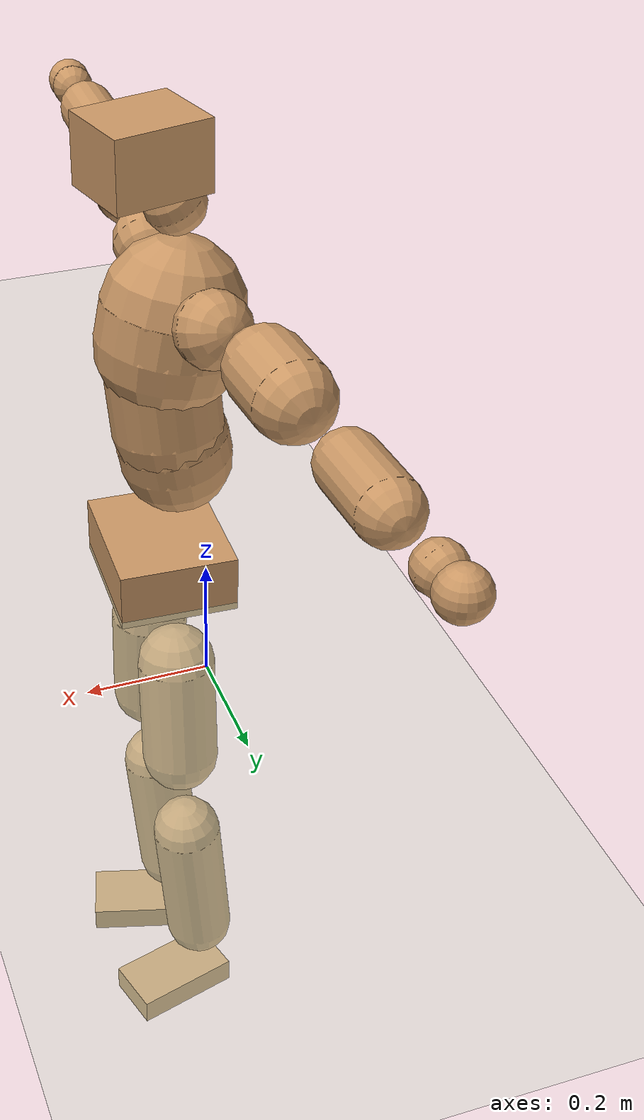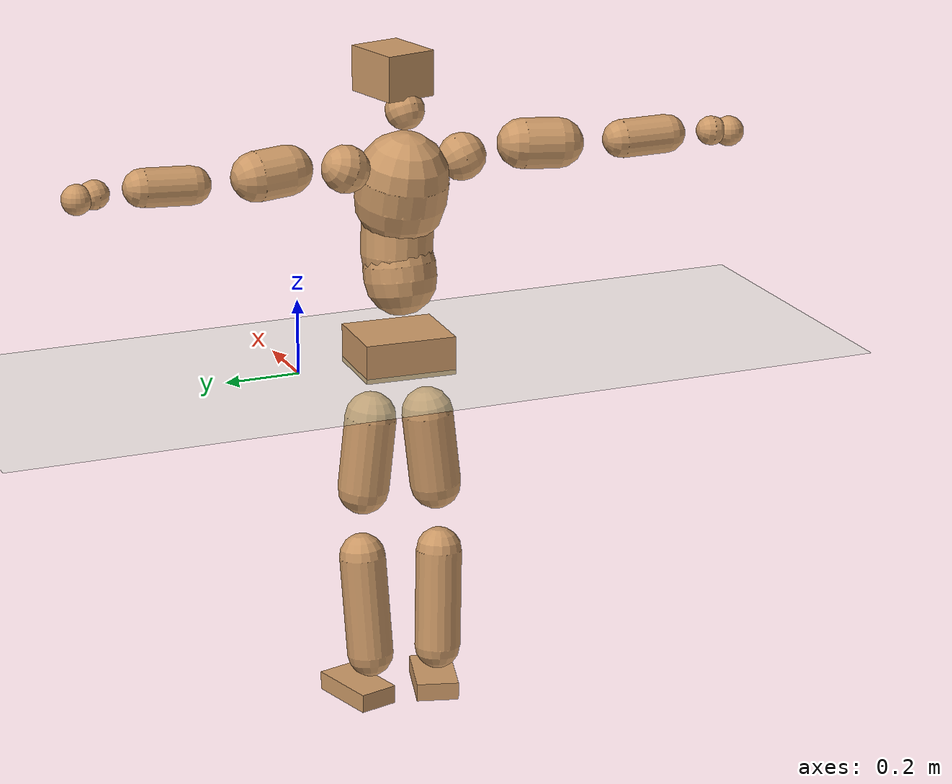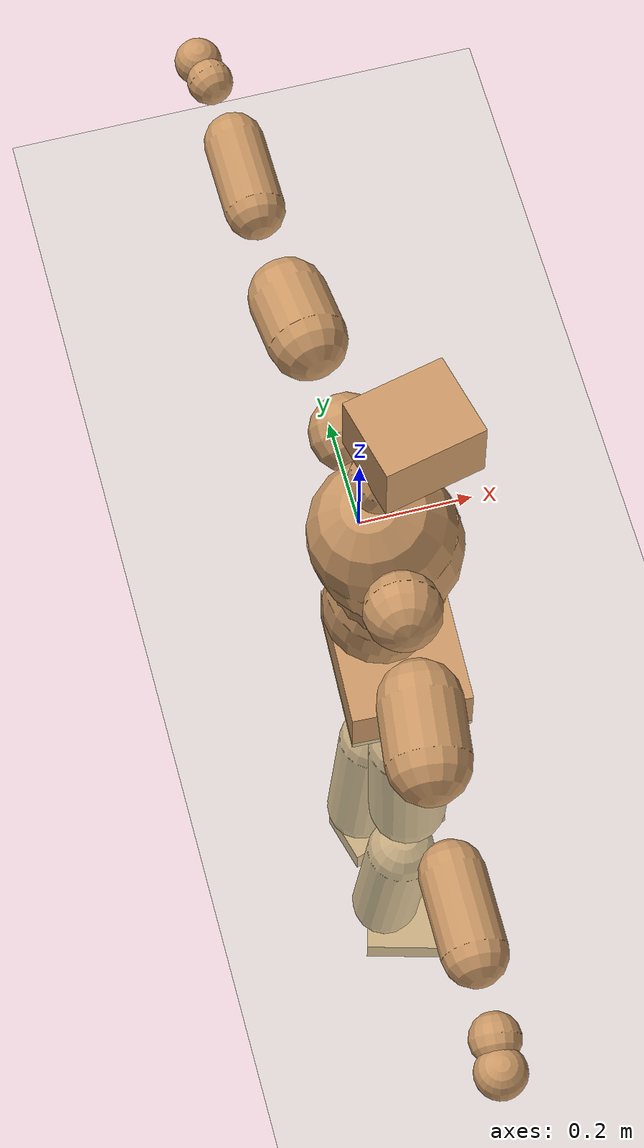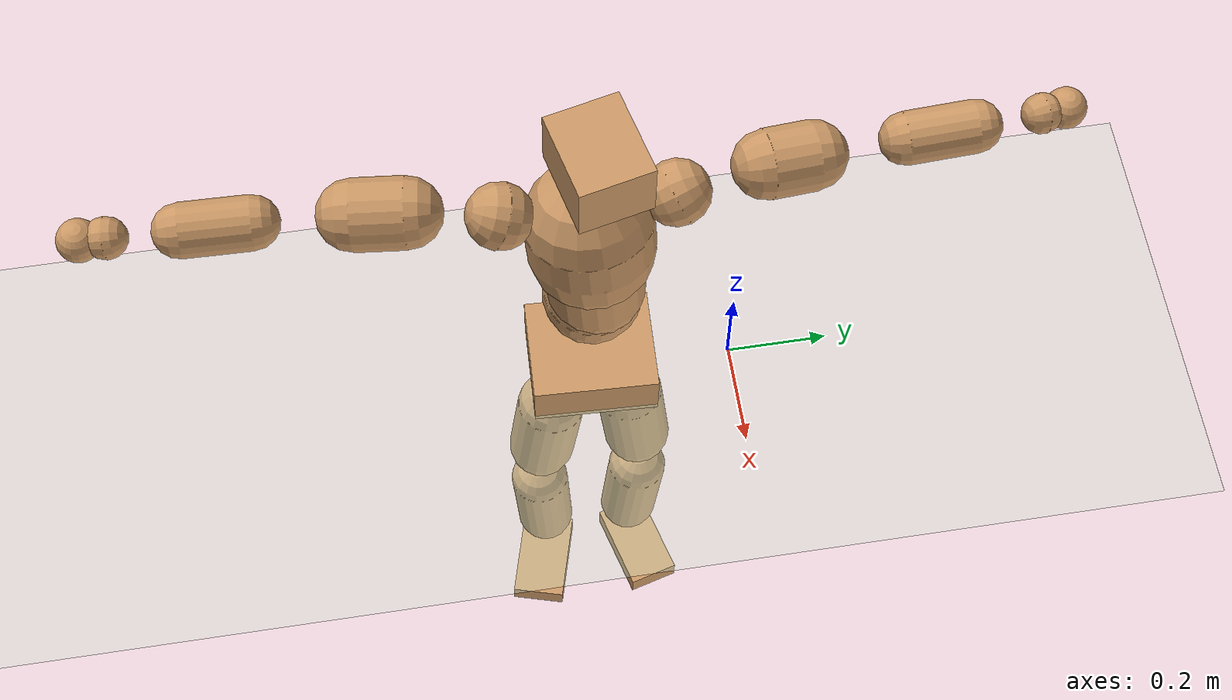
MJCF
<mujoco model="humanoid">
  <compiler coordinate="local" angle="radian"/>
  <default>
    <joint damping="0.0" armature="0.01" stiffness="0.0" limited="true"/>
    <geom conaffinity="1" condim="3" contype="7" margin="0.001" rgba="0.8 0.6 .4 1"/>
  </default>
  <asset>
    <texture type="skybox" builtin="gradient" rgb1=".4 .5 .6" rgb2="0 0 0" width="100" height="100"/>
    <texture builtin="flat" height="1278" mark="cross" markrgb="1 1 1" name="texgeom" random="0.01" rgb1="0.8 0.6 0.4" rgb2="0.8 0.6 0.4" type="cube" width="127"/>
    <texture builtin="checker" height="100" name="texplane" rgb1="0 0 0" rgb2="0.8 0.8 0.8" type="2d" width="100"/>
    <material name="MatPlane" reflectance="0.5" shininess="1" specular="1" texrepeat="60 60" texture="texplane"/>
    <material name="geom" texture="texgeom" texuniform="true"/>
  </asset>
  <worldbody>
    <light cutoff="100" diffuse="1 1 1" dir="-0 0 -1.3" directional="true" exponent="1" pos="0 0 1.3" specular=".1 .1 .1"/>
    <geom conaffinity="1" condim="3" name="floor" pos="0 0 0" rgba="0.8 0.9 0.8 1" size="100 100 .2" type="plane" material="MatPlane"/>
    <body name="Pelvis" pos="0.0017 -0.2773 0.0442">
      <freejoint name="Pelvis"/>
      <geom type="box" contype="1" conaffinity="1" density="5359.374888" pos="-0.0119 0.0005 -0.0081" size="0.1022 0.1227 0.0517" quat="0.9998 0.0000 0.0000 -0.0216" name="Pelvis"/>
      <body name="L_Hip" pos="-0.012 0.0697 -0.0901">
        <joint name="L_Hip_x" type="hinge" pos="0 0 0" axis="1 0 0" stiffness="1600" damping="160" armature="0.02" range="-180.0000 180.0000"/>
        <joint name="L_Hip_y" type="hinge" pos="0 0 0" axis="0 1 0" stiffness="1600" damping="160" armature="0.02" range="-180.0000 180.0000"/>
        <joint name="L_Hip_z" type="hinge" pos="0 0 0" axis="0 0 1" stiffness="1600" damping="160" armature="0.02" range="-180.0000 180.0000"/>
        <geom type="capsule" contype="1" conaffinity="1" density="2040.816327" size="0.0687" fromto="0.0008 0.0104 -0.0982 0.0025 0.0317 -0.2977" name="L_Hip"/>
        <body name="L_Knee" pos="0.0034 0.0421 -0.3959">
          <joint name="L_Knee_x" type="hinge" pos="0 0 0" axis="1 0 0" stiffness="1600" damping="160" armature="0.02" range="-180.0000 180.0000"/>
          <joint name="L_Knee_y" type="hinge" pos="0 0 0" axis="0 1 0" stiffness="1600" damping="160" armature="0.02" range="-180.0000 180.0000"/>
          <joint name="L_Knee_z" type="hinge" pos="0 0 0" axis="0 0 1" stiffness="1600" damping="160" armature="0.02" range="-180.0000 180.0000"/>
          <geom type="capsule" contype="1" conaffinity="1" density="1234.567901" size="0.0624" fromto="-0.0088 -0.0037 -0.0919 -0.0352 -0.0147 -0.3656" name="L_Knee"/>
          <body name="L_Ankle" pos="-0.044 -0.0184 -0.4575">
            <joint name="L_Ankle_x" type="hinge" pos="0 0 0" axis="1 0 0" stiffness="1600" damping="160" armature="0.02" range="-180.0000 180.0000"/>
            <joint name="L_Ankle_y" type="hinge" pos="0 0 0" axis="0 1 0" stiffness="1600" damping="160" armature="0.02" range="-180.0000 180.0000"/>
            <joint name="L_Ankle_z" type="hinge" pos="0 0 0" axis="0 0 1" stiffness="1600" damping="160" armature="0.02" range="-180.0000 180.0000"/>
            <geom type="box" contype="1" conaffinity="1" density="999.999991" pos="0.0673 0.0179 -0.0320" size="0.0976 0.0539 0.0251" quat="0.9916 0.0000 0.0000 0.1294" name="L_Ankle"/>
            <body name="L_Toe" pos="0.1347 0.0357 -0.064">
              <joint name="L_Toe_x" type="hinge" pos="0 0 0" axis="1 0 0" stiffness="1000" damping="100" armature="0.02" range="-180.0000 180.0000"/>
              <joint name="L_Toe_y" type="hinge" pos="0 0 0" axis="0 1 0" stiffness="1000" damping="100" armature="0.02" range="-180.0000 180.0000"/>
              <joint name="L_Toe_z" type="hinge" pos="0 0 0" axis="0 0 1" stiffness="1000" damping="100" armature="0.02" range="-180.0000 180.0000"/>
              <geom type="box" contype="1" conaffinity="1" density="8781246.433821" pos="0.0000 0.0000 0.0319" size="0.0011 0.0027 0.0013" quat="0.9909 0.0000 0.0000 0.1343" name="L_Toe"/>
            </body>
          </body>
        </body>
      </body>
      <body name="R_Hip" pos="-0.0087 -0.0711 -0.0981">
        <joint name="R_Hip_x" type="hinge" pos="0 0 0" axis="1 0 0" stiffness="1600" damping="160" armature="0.02" range="-180.0000 180.0000"/>
        <joint name="R_Hip_y" type="hinge" pos="0 0 0" axis="0 1 0" stiffness="1600" damping="160" armature="0.02" range="-180.0000 180.0000"/>
        <joint name="R_Hip_z" type="hinge" pos="0 0 0" axis="0 0 1" stiffness="1600" damping="160" armature="0.02" range="-180.0000 180.0000"/>
        <geom type="capsule" contype="1" conaffinity="1" density="2040.816327" size="0.0686" fromto="-0.0018 -0.0108 -0.0980 -0.0054 -0.0333 -0.3021" name="R_Hip"/>
        <body name="R_Knee" pos="-0.0072 -0.0442 -0.4001">
          <joint name="R_Knee_x" type="hinge" pos="0 0 0" axis="1 0 0" stiffness="1600" damping="160" armature="0.02" range="-180.0000 180.0000"/>
          <joint name="R_Knee_y" type="hinge" pos="0 0 0" axis="0 1 0" stiffness="1600" damping="160" armature="0.02" range="-180.0000 180.0000"/>
          <joint name="R_Knee_z" type="hinge" pos="0 0 0" axis="0 0 1" stiffness="1600" damping="160" armature="0.02" range="-180.0000 180.0000"/>
          <geom type="capsule" contype="1" conaffinity="1" density="1234.567901" size="0.0619" fromto="-0.0079 0.0045 -0.0915 -0.0313 0.0178 -0.3617" name="R_Knee"/>
          <body name="R_Ankle" pos="-0.0392 0.0224 -0.4531">
            <joint name="R_Ankle_x" type="hinge" pos="0 0 0" axis="1 0 0" stiffness="1600" damping="160" armature="0.02" range="-180.0000 180.0000"/>
            <joint name="R_Ankle_y" type="hinge" pos="0 0 0" axis="0 1 0" stiffness="1600" damping="160" armature="0.02" range="-180.0000 180.0000"/>
            <joint name="R_Ankle_z" type="hinge" pos="0 0 0" axis="0 0 1" stiffness="1600" damping="160" armature="0.02" range="-180.0000 180.0000"/>
            <geom type="box" contype="1" conaffinity="1" density="999.999915" pos="0.0706 -0.0201 -0.0341" size="0.0967 0.0571 0.0243" quat="0.9904 0.0000 0.0000 -0.1379" name="R_Ankle"/>
            <body name="R_Toe" pos="0.1412 -0.0401 -0.0682">
              <joint name="R_Toe_x" type="hinge" pos="0 0 0" axis="1 0 0" stiffness="1000" damping="100" armature="0.02" range="-180.0000 180.0000"/>
              <joint name="R_Toe_y" type="hinge" pos="0 0 0" axis="0 1 0" stiffness="1000" damping="100" armature="0.02" range="-180.0000 180.0000"/>
              <joint name="R_Toe_z" type="hinge" pos="0 0 0" axis="0 0 1" stiffness="1000" damping="100" armature="0.02" range="-180.0000 180.0000"/>
              <geom type="box" contype="1" conaffinity="1" density="8081144.738342" pos="0.0000 0.0000 0.0345" size="0.0013 0.0028 0.0012" quat="0.9916 0.0000 0.0000 -0.1297" name="R_Toe"/>
            </body>
          </body>
        </body>
      </body>
      <body name="Torso" pos="-0.0505 0.0044 0.1395">
        <joint name="Torso_x" type="hinge" pos="0 0 0" axis="1 0 0" stiffness="2000" damping="200" armature="0.02" range="-180.0000 180.0000"/>
        <joint name="Torso_y" type="hinge" pos="0 0 0" axis="0 1 0" stiffness="2000" damping="200" armature="0.02" range="-180.0000 180.0000"/>
        <joint name="Torso_z" type="hinge" pos="0 0 0" axis="0 0 1" stiffness="2000" damping="200" armature="0.02" range="-180.0000 180.0000"/>
        <geom type="capsule" contype="1" conaffinity="1" density="2040.816327" size="0.096" fromto="0.0179 0.0029 0.0943 0.0103 0.0016 0.0542" name="Torso"/>
        <body name="Spine" pos="0.0282 0.0045 0.1485">
          <joint name="Spine_x" type="hinge" pos="0 0 0" axis="1 0 0" stiffness="2000" damping="200" armature="0.02" range="-180.0000 180.0000"/>
          <joint name="Spine_y" type="hinge" pos="0 0 0" axis="0 1 0" stiffness="2000" damping="200" armature="0.02" range="-180.0000 180.0000"/>
          <joint name="Spine_z" type="hinge" pos="0 0 0" axis="0 0 1" stiffness="2000" damping="200" armature="0.02" range="-180.0000 180.0000"/>
          <geom type="capsule" contype="1" conaffinity="1" density="2040.816327" size="0.0946" fromto="0.0077 -0.0061 0.0941 -0.0026 0.0021 -0.0323" name="Spine"/>
          <body name="Chest" pos="0.0051 -0.004 0.0618">
            <joint name="Chest_x" type="hinge" pos="0 0 0" axis="1 0 0" stiffness="2000" damping="200" armature="0.02" range="-180.0000 180.0000"/>
            <joint name="Chest_y" type="hinge" pos="0 0 0" axis="0 1 0" stiffness="2000" damping="200" armature="0.02" range="-180.0000 180.0000"/>
            <joint name="Chest_z" type="hinge" pos="0 0 0" axis="0 0 1" stiffness="2000" damping="200" armature="0.02" range="-180.0000 180.0000"/>
            <geom type="capsule" contype="1" conaffinity="1" density="2040.816327" size="0.1203" fromto="-0.0247 -0.0062 0.1176 -0.0114 -0.0029 0.0542" name="Chest"/>
            <body name="Neck" pos="-0.0556 -0.014 0.2504">
              <joint name="Neck_x" type="hinge" pos="0 0 0" axis="1 0 0" stiffness="1000" damping="100" armature="0.02" range="-180.0000 180.0000"/>
              <joint name="Neck_y" type="hinge" pos="0 0 0" axis="0 1 0" stiffness="1000" damping="100" armature="0.02" range="-180.0000 180.0000"/>
              <joint name="Neck_z" type="hinge" pos="0 0 0" axis="0 0 1" stiffness="1000" damping="100" armature="0.02" range="-180.0000 180.0000"/>
              <geom type="capsule" contype="1" conaffinity="1" density="1000" size="0.0513" fromto="0.0255 0.0051 0.0448 0.0265 0.0053 0.0465" name="Neck"/>
              <body name="Head" pos="0.0519 0.0105 0.0914">
                <joint name="Head_x" type="hinge" pos="0 0 0" axis="1 0 0" stiffness="1000" damping="100" armature="0.02" range="-180.0000 180.0000"/>
                <joint name="Head_y" type="hinge" pos="0 0 0" axis="0 1 0" stiffness="1000" damping="100" armature="0.02" range="-180.0000 180.0000"/>
                <joint name="Head_z" type="hinge" pos="0 0 0" axis="0 0 1" stiffness="1000" damping="100" armature="0.02" range="-180.0000 180.0000"/>
                <geom type="box" contype="1" conaffinity="1" density="2250.000011" pos="0.0270 0.0062 0.0467" size="0.0837 0.0695 0.0594" quat="0.9935 0.0000 0.0000 0.1134" name="Head"/>
              </body>
            </body>
            <body name="L_Thorax" pos="-0.0236 0.0849 0.133">
              <joint name="L_Thorax_x" type="hinge" pos="0 0 0" axis="1 0 0" stiffness="1000" damping="100" armature="0.02" range="-180.0000 180.0000"/>
              <joint name="L_Thorax_y" type="hinge" pos="0 0 0" axis="0 1 0" stiffness="1000" damping="100" armature="0.02" range="-180.0000 180.0000"/>
              <joint name="L_Thorax_z" type="hinge" pos="0 0 0" axis="0 0 1" stiffness="1000" damping="100" armature="0.02" range="-180.0000 180.0000"/>
              <geom type="capsule" contype="1" conaffinity="1" density="1000" size="0.0626" fromto="-0.0125 0.0704 0.0249 -0.0128 0.0722 0.0256" name="L_Thorax"/>
              <body name="L_Shoulder" pos="-0.0252 0.1426 0.0505">
                <joint name="L_Shoulder_x" type="hinge" pos="0 0 0" axis="1 0 0" stiffness="1000" damping="100" armature="0.02" range="-720.0000 720.0000"/>
                <joint name="L_Shoulder_y" type="hinge" pos="0 0 0" axis="0 1 0" stiffness="1000" damping="100" armature="0.02" range="-720.0000 720.0000"/>
                <joint name="L_Shoulder_z" type="hinge" pos="0 0 0" axis="0 0 1" stiffness="1000" damping="100" armature="0.02" range="-720.0000 720.0000"/>
                <geom type="capsule" contype="1" conaffinity="1" density="1000" size="0.0651" fromto="-0.0096 0.0944 -0.0057 -0.0183 0.1808 -0.0109" name="L_Shoulder"/>
                <body name="L_Elbow" pos="-0.0279 0.2753 -0.0165">
                  <joint name="L_Elbow_x" type="hinge" pos="0 0 0" axis="1 0 0" stiffness="1000" damping="100" armature="0.02" range="-720.0000 720.0000"/>
                  <joint name="L_Elbow_y" type="hinge" pos="0 0 0" axis="0 1 0" stiffness="1000" damping="100" armature="0.02" range="-720.0000 720.0000"/>
                  <joint name="L_Elbow_z" type="hinge" pos="0 0 0" axis="0 0 1" stiffness="1000" damping="100" armature="0.02" range="-720.0000 720.0000"/>
                  <geom type="capsule" contype="1" conaffinity="1" density="1000" size="0.0495" fromto="-0.0011 0.0793 0.0043 -0.0029 0.2078 0.0113" name="L_Elbow"/>
                  <body name="L_Wrist" pos="-0.004 0.2872 0.0156">
                    <joint name="L_Wrist_x" type="hinge" pos="0 0 0" axis="1 0 0" stiffness="600" damping="60" armature="0.02" range="-180.0000 180.0000"/>
                    <joint name="L_Wrist_y" type="hinge" pos="0 0 0" axis="0 1 0" stiffness="600" damping="60" armature="0.02" range="-180.0000 180.0000"/>
                    <joint name="L_Wrist_z" type="hinge" pos="0 0 0" axis="0 0 1" stiffness="600" damping="60" armature="0.02" range="-180.0000 180.0000"/>
                    <geom type="capsule" contype="1" conaffinity="1" density="1000" size="0.0376" fromto="-0.0081 0.0461 -0.0056 -0.0085 0.0481 -0.0058" name="L_Wrist"/>
                    <body name="L_Hand" pos="-0.0166 0.0942 -0.0114">
                      <joint name="L_Hand_x" type="hinge" pos="0 0 0" axis="1 0 0" stiffness="600" damping="60" armature="0.02" range="-180.0000 180.0000"/>
                      <joint name="L_Hand_y" type="hinge" pos="0 0 0" axis="0 1 0" stiffness="600" damping="60" armature="0.02" range="-180.0000 180.0000"/>
                      <joint name="L_Hand_z" type="hinge" pos="0 0 0" axis="0 0 1" stiffness="600" damping="60" armature="0.02" range="-180.0000 180.0000"/>
                      <geom type="sphere" contype="1" conaffinity="1" density="1000" size="0.0388" pos="0.0000 0.0000 0.0000" name="L_Hand"/>
                    </body>
                  </body>
                </body>
              </body>
            </body>
            <body name="R_Thorax" pos="-0.029 -0.0981 0.1317">
              <joint name="R_Thorax_x" type="hinge" pos="0 0 0" axis="1 0 0" stiffness="1000" damping="100" armature="0.02" range="-180.0000 180.0000"/>
              <joint name="R_Thorax_y" type="hinge" pos="0 0 0" axis="0 1 0" stiffness="1000" damping="100" armature="0.02" range="-180.0000 180.0000"/>
              <joint name="R_Thorax_z" type="hinge" pos="0 0 0" axis="0 0 1" stiffness="1000" damping="100" armature="0.02" range="-180.0000 180.0000"/>
              <geom type="capsule" contype="1" conaffinity="1" density="1000" size="0.0627" fromto="-0.0063 -0.0659 0.0270 -0.0065 -0.0678 0.0278" name="R_Thorax"/>
              <body name="R_Shoulder" pos="-0.0127 -0.1337 0.0548">
                <joint name="R_Shoulder_x" type="hinge" pos="0 0 0" axis="1 0 0" stiffness="1000" damping="100" armature="0.02" range="-720.0000 720.0000"/>
                <joint name="R_Shoulder_y" type="hinge" pos="0 0 0" axis="0 1 0" stiffness="1000" damping="100" armature="0.02" range="-720.0000 720.0000"/>
                <joint name="R_Shoulder_z" type="hinge" pos="0 0 0" axis="0 0 1" stiffness="1000" damping="100" armature="0.02" range="-720.0000 720.0000"/>
                <geom type="capsule" contype="1" conaffinity="1" density="1000" size="0.0666" fromto="-0.0124 -0.0957 -0.0046 -0.0249 -0.1920 -0.0093" name="R_Shoulder"/>
                <body name="R_Elbow" pos="-0.0373 -0.2877 -0.0139">
                  <joint name="R_Elbow_x" type="hinge" pos="0 0 0" axis="1 0 0" stiffness="1000" damping="100" armature="0.02" range="-720.0000 720.0000"/>
                  <joint name="R_Elbow_y" type="hinge" pos="0 0 0" axis="0 1 0" stiffness="1000" damping="100" armature="0.02" range="-720.0000 720.0000"/>
                  <joint name="R_Elbow_z" type="hinge" pos="0 0 0" axis="0 0 1" stiffness="1000" damping="100" armature="0.02" range="-720.0000 720.0000"/>
                  <geom type="capsule" contype="1" conaffinity="1" density="1000" size="0.0506" fromto="-0.0014 -0.0806 0.0013 -0.0037 -0.2092 0.0033" name="R_Elbow"/>
                  <body name="R_Wrist" pos="-0.0051 -0.2898 0.0046">
                    <joint name="R_Wrist_x" type="hinge" pos="0 0 0" axis="1 0 0" stiffness="600" damping="60" armature="0.02" range="-180.0000 180.0000"/>
                    <joint name="R_Wrist_y" type="hinge" pos="0 0 0" axis="0 1 0" stiffness="600" damping="60" armature="0.02" range="-180.0000 180.0000"/>
                    <joint name="R_Wrist_z" type="hinge" pos="0 0 0" axis="0 0 1" stiffness="600" damping="60" armature="0.02" range="-180.0000 180.0000"/>
                    <geom type="capsule" contype="1" conaffinity="1" density="1000" size="0.0391" fromto="-0.0052 -0.0483 -0.0047 -0.0054 -0.0503 -0.0049" name="R_Wrist"/>
                    <body name="R_Hand" pos="-0.0106 -0.0985 -0.0096">
                      <joint name="R_Hand_x" type="hinge" pos="0 0 0" axis="1 0 0" stiffness="600" damping="60" armature="0.02" range="-180.0000 180.0000"/>
                      <joint name="R_Hand_y" type="hinge" pos="0 0 0" axis="0 1 0" stiffness="600" damping="60" armature="0.02" range="-180.0000 180.0000"/>
                      <joint name="R_Hand_z" type="hinge" pos="0 0 0" axis="0 0 1" stiffness="600" damping="60" armature="0.02" range="-180.0000 180.0000"/>
                      <geom type="sphere" contype="1" conaffinity="1" density="1000" size="0.0401" pos="0.0000 0.0000 0.0000" name="R_Hand"/>
                    </body>
                  </body>
                </body>
              </body>
            </body>
          </body>
        </body>
      </body>
    </body>
  </worldbody>
  <actuator>
    <motor name="L_Hip_x" joint="L_Hip_x" gear="500"/>
    <motor name="L_Hip_y" joint="L_Hip_y" gear="500"/>
    <motor name="L_Hip_z" joint="L_Hip_z" gear="500"/>
    <motor name="L_Knee_x" joint="L_Knee_x" gear="500"/>
    <motor name="L_Knee_y" joint="L_Knee_y" gear="500"/>
    <motor name="L_Knee_z" joint="L_Knee_z" gear="500"/>
    <motor name="L_Ankle_x" joint="L_Ankle_x" gear="500"/>
    <motor name="L_Ankle_y" joint="L_Ankle_y" gear="500"/>
    <motor name="L_Ankle_z" joint="L_Ankle_z" gear="500"/>
    <motor name="L_Toe_x" joint="L_Toe_x" gear="500"/>
    <motor name="L_Toe_y" joint="L_Toe_y" gear="500"/>
    <motor name="L_Toe_z" joint="L_Toe_z" gear="500"/>
    <motor name="R_Hip_x" joint="R_Hip_x" gear="500"/>
    <motor name="R_Hip_y" joint="R_Hip_y" gear="500"/>
    <motor name="R_Hip_z" joint="R_Hip_z" gear="500"/>
    <motor name="R_Knee_x" joint="R_Knee_x" gear="500"/>
    <motor name="R_Knee_y" joint="R_Knee_y" gear="500"/>
    <motor name="R_Knee_z" joint="R_Knee_z" gear="500"/>
    <motor name="R_Ankle_x" joint="R_Ankle_x" gear="500"/>
    <motor name="R_Ankle_y" joint="R_Ankle_y" gear="500"/>
    <motor name="R_Ankle_z" joint="R_Ankle_z" gear="500"/>
    <motor name="R_Toe_x" joint="R_Toe_x" gear="500"/>
    <motor name="R_Toe_y" joint="R_Toe_y" gear="500"/>
    <motor name="R_Toe_z" joint="R_Toe_z" gear="500"/>
    <motor name="Torso_x" joint="Torso_x" gear="500"/>
    <motor name="Torso_y" joint="Torso_y" gear="500"/>
    <motor name="Torso_z" joint="Torso_z" gear="500"/>
    <motor name="Spine_x" joint="Spine_x" gear="500"/>
    <motor name="Spine_y" joint="Spine_y" gear="500"/>
    <motor name="Spine_z" joint="Spine_z" gear="500"/>
    <motor name="Chest_x" joint="Chest_x" gear="500"/>
    <motor name="Chest_y" joint="Chest_y" gear="500"/>
    <motor name="Chest_z" joint="Chest_z" gear="500"/>
    <motor name="Neck_x" joint="Neck_x" gear="500"/>
    <motor name="Neck_y" joint="Neck_y" gear="500"/>
    <motor name="Neck_z" joint="Neck_z" gear="500"/>
    <motor name="Head_x" joint="Head_x" gear="500"/>
    <motor name="Head_y" joint="Head_y" gear="500"/>
    <motor name="Head_z" joint="Head_z" gear="500"/>
    <motor name="L_Thorax_x" joint="L_Thorax_x" gear="500"/>
    <motor name="L_Thorax_y" joint="L_Thorax_y" gear="500"/>
    <motor name="L_Thorax_z" joint="L_Thorax_z" gear="500"/>
    <motor name="L_Shoulder_x" joint="L_Shoulder_x" gear="500"/>
    <motor name="L_Shoulder_y" joint="L_Shoulder_y" gear="500"/>
    <motor name="L_Shoulder_z" joint="L_Shoulder_z" gear="500"/>
    <motor name="L_Elbow_x" joint="L_Elbow_x" gear="500"/>
    <motor name="L_Elbow_y" joint="L_Elbow_y" gear="500"/>
    <motor name="L_Elbow_z" joint="L_Elbow_z" gear="500"/>
    <motor name="L_Wrist_x" joint="L_Wrist_x" gear="500"/>
    <motor name="L_Wrist_y" joint="L_Wrist_y" gear="500"/>
    <motor name="L_Wrist_z" joint="L_Wrist_z" gear="500"/>
    <motor name="L_Hand_x" joint="L_Hand_x" gear="500"/>
    <motor name="L_Hand_y" joint="L_Hand_y" gear="500"/>
    <motor name="L_Hand_z" joint="L_Hand_z" gear="500"/>
    <motor name="R_Thorax_x" joint="R_Thorax_x" gear="500"/>
    <motor name="R_Thorax_y" joint="R_Thorax_y" gear="500"/>
    <motor name="R_Thorax_z" joint="R_Thorax_z" gear="500"/>
    <motor name="R_Shoulder_x" joint="R_Shoulder_x" gear="500"/>
    <motor name="R_Shoulder_y" joint="R_Shoulder_y" gear="500"/>
    <motor name="R_Shoulder_z" joint="R_Shoulder_z" gear="500"/>
    <motor name="R_Elbow_x" joint="R_Elbow_x" gear="500"/>
    <motor name="R_Elbow_y" joint="R_Elbow_y" gear="500"/>
    <motor name="R_Elbow_z" joint="R_Elbow_z" gear="500"/>
    <motor name="R_Wrist_x" joint="R_Wrist_x" gear="500"/>
    <motor name="R_Wrist_y" joint="R_Wrist_y" gear="500"/>
    <motor name="R_Wrist_z" joint="R_Wrist_z" gear="500"/>
    <motor name="R_Hand_x" joint="R_Hand_x" gear="500"/>
    <motor name="R_Hand_y" joint="R_Hand_y" gear="500"/>
    <motor name="R_Hand_z" joint="R_Hand_z" gear="500"/>
  </actuator>
  <contact>
    <exclude body1="Torso" body2="Chest"/>
    <exclude body1="Head" body2="Chest"/>
    <exclude body1="R_Knee" body2="R_Toe"/>
    <exclude body1="R_Knee" body2="L_Ankle"/>
    <exclude body1="R_Knee" body2="L_Toe"/>
    <exclude body1="L_Knee" body2="L_Toe"/>
    <exclude body1="L_Knee" body2="R_Ankle"/>
    <exclude body1="L_Knee" body2="R_Toe"/>
    <exclude body1="L_Shoulder" body2="Chest"/>
    <exclude body1="R_Shoulder" body2="Chest"/>
  </contact>
  <sensor/>
  <size njmax="700" nconmax="700"/>
</mujoco>
